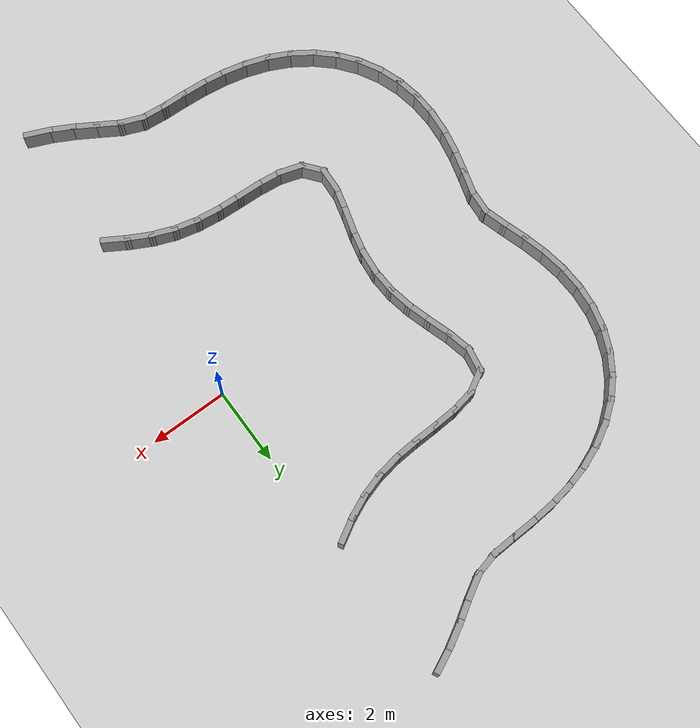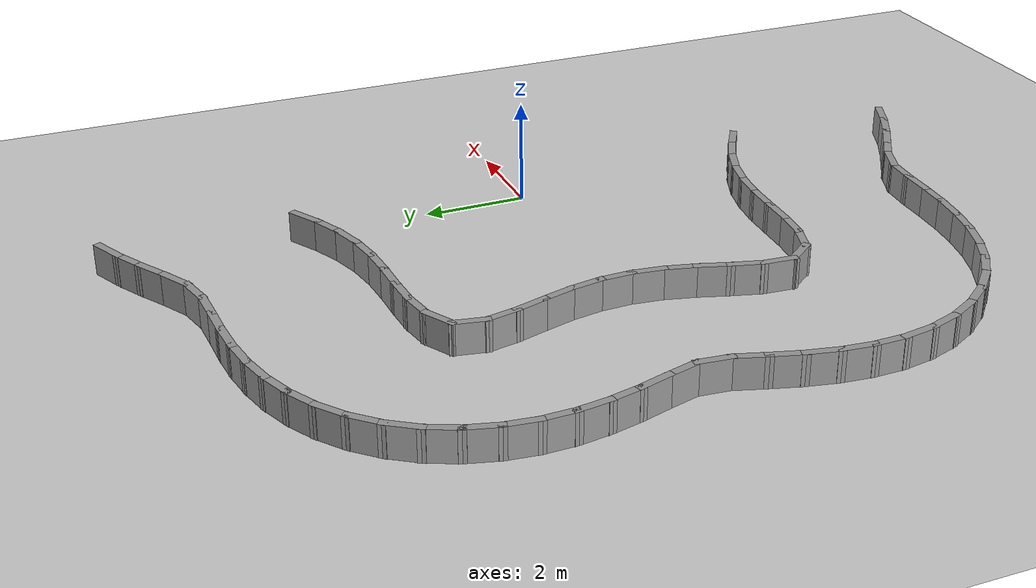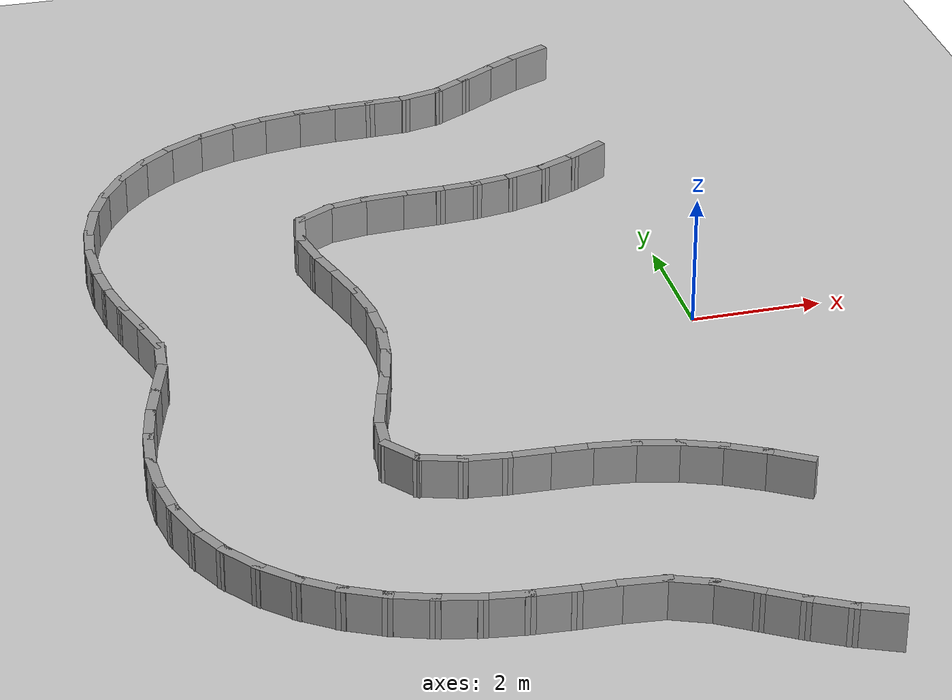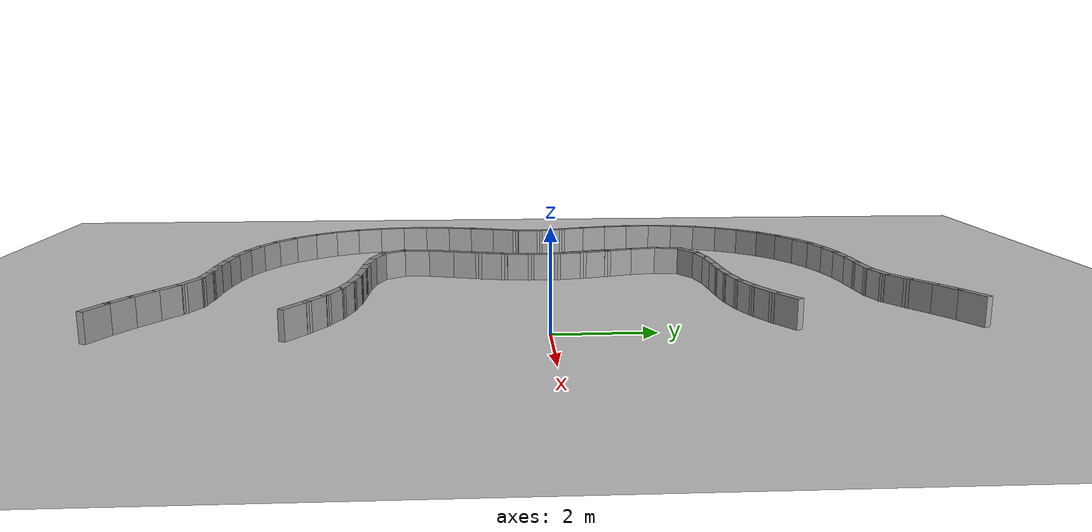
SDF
<sdf version="1.7">
 <world name="default">
  <model name="ground_plane">
   <static>1</static>
   <link name="link">
    <collision name="collision">
     <geometry><plane><normal>0 0 1</normal><size>100 100</size></plane></geometry>
     <surface><friction><ode><mu>100</mu><mu2>50</mu2></ode></friction></surface>
    </collision>
    <visual name="visual">
     <cast_shadows>0</cast_shadows>
     <geometry><plane><normal>0 0 1</normal><size>100 100</size></plane></geometry>
     <material>
      <script><uri>file://media/materials/scripts/gazebo.material</uri><name>Gazebo/Grey</name></script>
     </material>
    </visual>
   </link>
  </model>
  <model name="rand_lobed_06">
   <link name="Wall_16">
    <collision name="Wall_16_Collision">
     <geometry><box><size>0.7499 0.1500 0.6000</size></box></geometry>
     <pose>0 0 0.3000 0 -0 0</pose>
    </collision>
    <visual name="Wall_16_Visual">
     <pose>0 0 0.3000 0 -0 0</pose>
     <geometry><box><size>0.7499 0.1500 0.6000</size></box></geometry>
     <material>
      <script><uri>file://media/materials/scripts/gazebo.material</uri><name>Gazebo/Grey</name></script>
      <ambient>1 1 1 1</ambient>
     </material>
    </visual>
    <pose>-0.3898 4.5108 0 0 -0 -2.62298</pose>
   </link>
   <link name="Wall_17">
    <collision name="Wall_17_Collision">
     <geometry><box><size>0.7497 0.1500 0.6000</size></box></geometry>
     <pose>0 0 0.3000 0 -0 0</pose>
    </collision>
    <visual name="Wall_17_Visual">
     <pose>0 0 0.3000 0 -0 0</pose>
     <geometry><box><size>0.7497 0.1500 0.6000</size></box></geometry>
     <material>
      <script><uri>file://media/materials/scripts/gazebo.material</uri><name>Gazebo/Grey</name></script>
      <ambient>1 1 1 1</ambient>
     </material>
    </visual>
    <pose>-0.9238 4.2391 0 0 -0 -2.71880</pose>
   </link>
   <link name="Wall_18">
    <collision name="Wall_18_Collision">
     <geometry><box><size>0.7496 0.1500 0.6000</size></box></geometry>
     <pose>0 0 0.3000 0 -0 0</pose>
    </collision>
    <visual name="Wall_18_Visual">
     <pose>0 0 0.3000 0 -0 0</pose>
     <geometry><box><size>0.7496 0.1500 0.6000</size></box></geometry>
     <material>
      <script><uri>file://media/materials/scripts/gazebo.material</uri><name>Gazebo/Grey</name></script>
      <ambient>1 1 1 1</ambient>
     </material>
    </visual>
    <pose>-1.4839 4.0286 0 0 -0 -2.84539</pose>
   </link>
   <link name="Wall_19">
    <collision name="Wall_19_Collision">
     <geometry><box><size>0.7497 0.1500 0.6000</size></box></geometry>
     <pose>0 0 0.3000 0 -0 0</pose>
    </collision>
    <visual name="Wall_19_Visual">
     <pose>0 0 0.3000 0 -0 0</pose>
     <geometry><box><size>0.7497 0.1500 0.6000</size></box></geometry>
     <material>
      <script><uri>file://media/materials/scripts/gazebo.material</uri><name>Gazebo/Grey</name></script>
      <ambient>1 1 1 1</ambient>
     </material>
    </visual>
    <pose>-2.0662 3.8906 0 0 -0 -2.97214</pose>
   </link>
   <link name="Wall_20">
    <collision name="Wall_20_Collision">
     <geometry><box><size>0.7499 0.1500 0.6000</size></box></geometry>
     <pose>0 0 0.3000 0 -0 0</pose>
    </collision>
    <visual name="Wall_20_Visual">
     <pose>0 0 0.3000 0 -0 0</pose>
     <geometry><box><size>0.7499 0.1500 0.6000</size></box></geometry>
     <material>
      <script><uri>file://media/materials/scripts/gazebo.material</uri><name>Gazebo/Grey</name></script>
      <ambient>1 1 1 1</ambient>
     </material>
    </visual>
    <pose>-2.6608 3.8182 0 0 -0 -3.06905</pose>
   </link>
   <link name="Wall_21">
    <collision name="Wall_21_Collision">
     <geometry><box><size>0.7500 0.1500 0.6000</size></box></geometry>
     <pose>0 0 0.3000 0 -0 0</pose>
    </collision>
    <visual name="Wall_21_Visual">
     <pose>0 0 0.3000 0 -0 0</pose>
     <geometry><box><size>0.7500 0.1500 0.6000</size></box></geometry>
     <material>
      <script><uri>file://media/materials/scripts/gazebo.material</uri><name>Gazebo/Grey</name></script>
      <ambient>1 1 1 1</ambient>
     </material>
    </visual>
    <pose>-3.2598 3.7874 0 0 -0 -3.11126</pose>
   </link>
   <link name="Wall_22">
    <collision name="Wall_22_Collision">
     <geometry><box><size>0.7499 0.1500 0.6000</size></box></geometry>
     <pose>0 0 0.3000 0 -0 0</pose>
    </collision>
    <visual name="Wall_22_Visual">
     <pose>0 0 0.3000 0 -0 0</pose>
     <geometry><box><size>0.7499 0.1500 0.6000</size></box></geometry>
     <material>
      <script><uri>file://media/materials/scripts/gazebo.material</uri><name>Gazebo/Grey</name></script>
      <ambient>1 1 1 1</ambient>
     </material>
    </visual>
    <pose>-3.8591 3.7602 0 0 -0 -3.08132</pose>
   </link>
   <link name="Wall_23">
    <collision name="Wall_23_Collision">
     <geometry><box><size>0.7491 0.1500 0.6000</size></box></geometry>
     <pose>0 0 0.3000 0 -0 0</pose>
    </collision>
    <visual name="Wall_23_Visual">
     <pose>0 0 0.3000 0 -0 0</pose>
     <geometry><box><size>0.7491 0.1500 0.6000</size></box></geometry>
     <material>
      <script><uri>file://media/materials/scripts/gazebo.material</uri><name>Gazebo/Grey</name></script>
      <ambient>1 1 1 1</ambient>
     </material>
    </visual>
    <pose>-4.4530 3.6874 0 0 -0 -2.95773</pose>
   </link>
   <link name="Wall_24">
    <collision name="Wall_24_Collision">
     <geometry><box><size>0.7418 0.1500 0.6000</size></box></geometry>
     <pose>0 0 0.3000 0 -0 0</pose>
    </collision>
    <visual name="Wall_24_Visual">
     <pose>0 0 0.3000 0 -0 0</pose>
     <geometry><box><size>0.7418 0.1500 0.6000</size></box></geometry>
     <material>
      <script><uri>file://media/materials/scripts/gazebo.material</uri><name>Gazebo/Grey</name></script>
      <ambient>1 1 1 1</ambient>
     </material>
    </visual>
    <pose>-5.0051 3.4870 0 0 -0 -2.62699</pose>
   </link>
   <link name="Wall_25">
    <collision name="Wall_25_Collision">
     <geometry><box><size>0.7351 0.1500 0.6000</size></box></geometry>
     <pose>0 0 0.3000 0 -0 0</pose>
    </collision>
    <visual name="Wall_25_Visual">
     <pose>0 0 0.3000 0 -0 0</pose>
     <geometry><box><size>0.7351 0.1500 0.6000</size></box></geometry>
     <material>
      <script><uri>file://media/materials/scripts/gazebo.material</uri><name>Gazebo/Grey</name></script>
      <ambient>1 1 1 1</ambient>
     </material>
    </visual>
    <pose>-5.3164 3.0538 0 0 -0 -1.75554</pose>
   </link>
   <link name="Wall_26">
    <collision name="Wall_26_Collision">
     <geometry><box><size>0.7492 0.1500 0.6000</size></box></geometry>
     <pose>0 0 0.3000 0 -0 0</pose>
    </collision>
    <visual name="Wall_26_Visual">
     <pose>0 0 0.3000 0 -0 0</pose>
     <geometry><box><size>0.7492 0.1500 0.6000</size></box></geometry>
     <material>
      <script><uri>file://media/materials/scripts/gazebo.material</uri><name>Gazebo/Grey</name></script>
      <ambient>1 1 1 1</ambient>
     </material>
    </visual>
    <pose>-5.3083 2.4731 0 0 -0 -1.36271</pose>
   </link>
   <link name="Wall_27">
    <collision name="Wall_27_Collision">
     <geometry><box><size>0.7500 0.1500 0.6000</size></box></geometry>
     <pose>0 0 0.3000 0 -0 0</pose>
    </collision>
    <visual name="Wall_27_Visual">
     <pose>0 0 0.3000 0 -0 0</pose>
     <geometry><box><size>0.7500 0.1500 0.6000</size></box></geometry>
     <material>
      <script><uri>file://media/materials/scripts/gazebo.material</uri><name>Gazebo/Grey</name></script>
      <ambient>1 1 1 1</ambient>
     </material>
    </visual>
    <pose>-5.1570 1.8935 0 0 -0 -1.26837</pose>
   </link>
   <link name="Wall_28">
    <collision name="Wall_28_Collision">
     <geometry><box><size>0.7499 0.1500 0.6000</size></box></geometry>
     <pose>0 0 0.3000 0 -0 0</pose>
    </collision>
    <visual name="Wall_28_Visual">
     <pose>0 0 0.3000 0 -0 0</pose>
     <geometry><box><size>0.7499 0.1500 0.6000</size></box></geometry>
     <material>
      <script><uri>file://media/materials/scripts/gazebo.material</uri><name>Gazebo/Grey</name></script>
      <ambient>1 1 1 1</ambient>
     </material>
    </visual>
    <pose>-4.9851 1.3188 0 0 -0 -1.29181</pose>
   </link>
   <link name="Wall_29">
    <collision name="Wall_29_Collision">
     <geometry><box><size>0.7496 0.1500 0.6000</size></box></geometry>
     <pose>0 0 0.3000 0 -0 0</pose>
    </collision>
    <visual name="Wall_29_Visual">
     <pose>0 0 0.3000 0 -0 0</pose>
     <geometry><box><size>0.7496 0.1500 0.6000</size></box></geometry>
     <material>
      <script><uri>file://media/materials/scripts/gazebo.material</uri><name>Gazebo/Grey</name></script>
      <ambient>1 1 1 1</ambient>
     </material>
    </visual>
    <pose>-4.8491 0.7355 0 0 -0 -1.39195</pose>
   </link>
   <link name="Wall_30">
    <collision name="Wall_30_Collision">
     <geometry><box><size>0.7494 0.1500 0.6000</size></box></geometry>
     <pose>0 0 0.3000 0 -0 0</pose>
    </collision>
    <visual name="Wall_30_Visual">
     <pose>0 0 0.3000 0 -0 0</pose>
     <geometry><box><size>0.7494 0.1500 0.6000</size></box></geometry>
     <material>
      <script><uri>file://media/materials/scripts/gazebo.material</uri><name>Gazebo/Grey</name></script>
      <ambient>1 1 1 1</ambient>
     </material>
    </visual>
    <pose>-4.7850 0.1410 0 0 -0 -1.53478</pose>
   </link>
   <link name="Wall_31">
    <collision name="Wall_31_Collision">
     <geometry><box><size>0.7495 0.1500 0.6000</size></box></geometry>
     <pose>0 0 0.3000 0 -0 0</pose>
    </collision>
    <visual name="Wall_31_Visual">
     <pose>0 0 0.3000 0 -0 0</pose>
     <geometry><box><size>0.7495 0.1500 0.6000</size></box></geometry>
     <material>
      <script><uri>file://media/materials/scripts/gazebo.material</uri><name>Gazebo/Grey</name></script>
      <ambient>1 1 1 1</ambient>
     </material>
    </visual>
    <pose>-4.8085 -0.4563 0 0 -0 -1.68550</pose>
   </link>
   <link name="Wall_32">
    <collision name="Wall_32_Collision">
     <geometry><box><size>0.7497 0.1500 0.6000</size></box></geometry>
     <pose>0 0 0.3000 0 -0 0</pose>
    </collision>
    <visual name="Wall_32_Visual">
     <pose>0 0 0.3000 0 -0 0</pose>
     <geometry><box><size>0.7497 0.1500 0.6000</size></box></geometry>
     <material>
      <script><uri>file://media/materials/scripts/gazebo.material</uri><name>Gazebo/Grey</name></script>
      <ambient>1 1 1 1</ambient>
     </material>
    </visual>
    <pose>-4.9139 -1.0454 0 0 -0 -1.81005</pose>
   </link>
   <link name="Wall_33">
    <collision name="Wall_33_Collision">
     <geometry><box><size>0.7500 0.1500 0.6000</size></box></geometry>
     <pose>0 0 0.3000 0 -0 0</pose>
    </collision>
    <visual name="Wall_33_Visual">
     <pose>0 0 0.3000 0 -0 0</pose>
     <geometry><box><size>0.7500 0.1500 0.6000</size></box></geometry>
     <material>
      <script><uri>file://media/materials/scripts/gazebo.material</uri><name>Gazebo/Grey</name></script>
      <ambient>1 1 1 1</ambient>
     </material>
    </visual>
    <pose>-5.0745 -1.6231 0 0 -0 -1.87388</pose>
   </link>
   <link name="Wall_34">
    <collision name="Wall_34_Collision">
     <geometry><box><size>0.7498 0.1500 0.6000</size></box></geometry>
     <pose>0 0 0.3000 0 -0 0</pose>
    </collision>
    <visual name="Wall_34_Visual">
     <pose>0 0 0.3000 0 -0 0</pose>
     <geometry><box><size>0.7498 0.1500 0.6000</size></box></geometry>
     <material>
      <script><uri>file://media/materials/scripts/gazebo.material</uri><name>Gazebo/Grey</name></script>
      <ambient>1 1 1 1</ambient>
     </material>
    </visual>
    <pose>-5.2444 -2.1983 0 0 -0 -1.84209</pose>
   </link>
   <link name="Wall_35">
    <collision name="Wall_35_Collision">
     <geometry><box><size>0.7469 0.1500 0.6000</size></box></geometry>
     <pose>0 0 0.3000 0 -0 0</pose>
    </collision>
    <visual name="Wall_35_Visual">
     <pose>0 0 0.3000 0 -0 0</pose>
     <geometry><box><size>0.7469 0.1500 0.6000</size></box></geometry>
     <material>
      <script><uri>file://media/materials/scripts/gazebo.material</uri><name>Gazebo/Grey</name></script>
      <ambient>1 1 1 1</ambient>
     </material>
    </visual>
    <pose>-5.3463 -2.7849 0 0 -0 -1.64294</pose>
   </link>
   <link name="Wall_36">
    <collision name="Wall_36_Collision">
     <geometry><box><size>0.7226 0.1500 0.6000</size></box></geometry>
     <pose>0 0 0.3000 0 -0 0</pose>
    </collision>
    <visual name="Wall_36_Visual">
     <pose>0 0 0.3000 0 -0 0</pose>
     <geometry><box><size>0.7226 0.1500 0.6000</size></box></geometry>
     <material>
      <script><uri>file://media/materials/scripts/gazebo.material</uri><name>Gazebo/Grey</name></script>
      <ambient>1 1 1 1</ambient>
     </material>
    </visual>
    <pose>-5.1893 -3.3064 0 0 -0 -0.89751</pose>
   </link>
   <link name="Wall_37">
    <collision name="Wall_37_Collision">
     <geometry><box><size>0.7479 0.1500 0.6000</size></box></geometry>
     <pose>0 0 0.3000 0 -0 0</pose>
    </collision>
    <visual name="Wall_37_Visual">
     <pose>0 0 0.3000 0 -0 0</pose>
     <geometry><box><size>0.7479 0.1500 0.6000</size></box></geometry>
     <material>
      <script><uri>file://media/materials/scripts/gazebo.material</uri><name>Gazebo/Grey</name></script>
      <ambient>1 1 1 1</ambient>
     </material>
    </visual>
    <pose>-4.7247 -3.6171 0 0 -0 -0.29486</pose>
   </link>
   <link name="Wall_38">
    <collision name="Wall_38_Collision">
     <geometry><box><size>0.7497 0.1500 0.6000</size></box></geometry>
     <pose>0 0 0.3000 0 -0 0</pose>
    </collision>
    <visual name="Wall_38_Visual">
     <pose>0 0 0.3000 0 -0 0</pose>
     <geometry><box><size>0.7497 0.1500 0.6000</size></box></geometry>
     <material>
      <script><uri>file://media/materials/scripts/gazebo.material</uri><name>Gazebo/Grey</name></script>
      <ambient>1 1 1 1</ambient>
     </material>
    </visual>
    <pose>-4.1404 -3.7353 0 0 -0 -0.10435</pose>
   </link>
   <link name="Wall_39">
    <collision name="Wall_39_Collision">
     <geometry><box><size>0.7500 0.1500 0.6000</size></box></geometry>
     <pose>0 0 0.3000 0 -0 0</pose>
    </collision>
    <visual name="Wall_39_Visual">
     <pose>0 0 0.3000 0 -0 0</pose>
     <geometry><box><size>0.7500 0.1500 0.6000</size></box></geometry>
     <material>
      <script><uri>file://media/materials/scripts/gazebo.material</uri><name>Gazebo/Grey</name></script>
      <ambient>1 1 1 1</ambient>
     </material>
    </visual>
    <pose>-3.5424 -3.7769 0 0 -0 -0.03458</pose>
   </link>
   <link name="Wall_40">
    <collision name="Wall_40_Collision">
     <geometry><box><size>0.7499 0.1500 0.6000</size></box></geometry>
     <pose>0 0 0.3000 0 -0 0</pose>
    </collision>
    <visual name="Wall_40_Visual">
     <pose>0 0 0.3000 0 -0 0</pose>
     <geometry><box><size>0.7499 0.1500 0.6000</size></box></geometry>
     <material>
      <script><uri>file://media/materials/scripts/gazebo.material</uri><name>Gazebo/Grey</name></script>
      <ambient>1 1 1 1</ambient>
     </material>
    </visual>
    <pose>-2.9429 -3.8006 0 0 -0 -0.04460</pose>
   </link>
   <link name="Wall_41">
    <collision name="Wall_41_Collision">
     <geometry><box><size>0.7497 0.1500 0.6000</size></box></geometry>
     <pose>0 0 0.3000 0 -0 0</pose>
    </collision>
    <visual name="Wall_41_Visual">
     <pose>0 0 0.3000 0 -0 0</pose>
     <geometry><box><size>0.7497 0.1500 0.6000</size></box></geometry>
     <material>
      <script><uri>file://media/materials/scripts/gazebo.material</uri><name>Gazebo/Grey</name></script>
      <ambient>1 1 1 1</ambient>
     </material>
    </visual>
    <pose>-2.3455 -3.8494 0 0 -0 -0.11838</pose>
   </link>
   <link name="Wall_42">
    <collision name="Wall_42_Collision">
     <geometry><box><size>0.7496 0.1500 0.6000</size></box></geometry>
     <pose>0 0 0.3000 0 -0 0</pose>
    </collision>
    <visual name="Wall_42_Visual">
     <pose>0 0 0.3000 0 -0 0</pose>
     <geometry><box><size>0.7496 0.1500 0.6000</size></box></geometry>
     <material>
      <script><uri>file://media/materials/scripts/gazebo.material</uri><name>Gazebo/Grey</name></script>
      <ambient>1 1 1 1</ambient>
     </material>
    </visual>
    <pose>-1.7561 -3.9545 0 0 -0 -0.23457</pose>
   </link>
   <link name="Wall_43">
    <collision name="Wall_43_Collision">
     <geometry><box><size>0.7496 0.1500 0.6000</size></box></geometry>
     <pose>0 0 0.3000 0 -0 0</pose>
    </collision>
    <visual name="Wall_43_Visual">
     <pose>0 0 0.3000 0 -0 0</pose>
     <geometry><box><size>0.7496 0.1500 0.6000</size></box></geometry>
     <material>
      <script><uri>file://media/materials/scripts/gazebo.material</uri><name>Gazebo/Grey</name></script>
      <ambient>1 1 1 1</ambient>
     </material>
    </visual>
    <pose>-1.1845 -4.1312 0 0 -0 -0.36510</pose>
   </link>
   <link name="Wall_44">
    <collision name="Wall_44_Collision">
     <geometry><box><size>0.7498 0.1500 0.6000</size></box></geometry>
     <pose>0 0 0.3000 0 -0 0</pose>
    </collision>
    <visual name="Wall_44_Visual">
     <pose>0 0 0.3000 0 -0 0</pose>
     <geometry><box><size>0.7498 0.1500 0.6000</size></box></geometry>
     <material>
      <script><uri>file://media/materials/scripts/gazebo.material</uri><name>Gazebo/Grey</name></script>
      <ambient>1 1 1 1</ambient>
     </material>
    </visual>
    <pose>-0.6384 -4.3765 0 0 -0 -0.47925</pose>
   </link>
   <link name="Wall_45">
    <collision name="Wall_45_Collision">
     <geometry><box><size>0.7500 0.1500 0.6000</size></box></geometry>
     <pose>0 0 0.3000 0 -0 0</pose>
    </collision>
    <visual name="Wall_45_Visual">
     <pose>0 0 0.3000 0 -0 0</pose>
     <geometry><box><size>0.7500 0.1500 0.6000</size></box></geometry>
     <material>
      <script><uri>file://media/materials/scripts/gazebo.material</uri><name>Gazebo/Grey</name></script>
      <ambient>1 1 1 1</ambient>
     </material>
    </visual>
    <pose>-0.1160 -4.6708 0 0 -0 -0.54672</pose>
   </link>
   <link name="Wall_85">
    <collision name="Wall_85_Collision">
     <geometry><box><size>0.7498 0.1500 0.6000</size></box></geometry>
     <pose>0 0 0.3000 0 -0 0</pose>
    </collision>
    <visual name="Wall_85_Visual">
     <pose>0 0 0.3000 0 -0 0</pose>
     <geometry><box><size>0.7498 0.1500 0.6000</size></box></geometry>
     <material>
      <script><uri>file://media/materials/scripts/gazebo.material</uri><name>Gazebo/Grey</name></script>
      <ambient>1 1 1 1</ambient>
     </material>
    </visual>
    <pose>-0.3827 8.1533 0 0 -0 -2.70445</pose>
   </link>
   <link name="Wall_86">
    <collision name="Wall_86_Collision">
     <geometry><box><size>0.7499 0.1500 0.6000</size></box></geometry>
     <pose>0 0 0.3000 0 -0 0</pose>
    </collision>
    <visual name="Wall_86_Visual">
     <pose>0 0 0.3000 0 -0 0</pose>
     <geometry><box><size>0.7499 0.1500 0.6000</size></box></geometry>
     <material>
      <script><uri>file://media/materials/scripts/gazebo.material</uri><name>Gazebo/Grey</name></script>
      <ambient>1 1 1 1</ambient>
     </material>
    </visual>
    <pose>-0.9159 7.8793 0 0 -0 -2.62931</pose>
   </link>
   <link name="Wall_87">
    <collision name="Wall_87_Collision">
     <geometry><box><size>0.7500 0.1500 0.6000</size></box></geometry>
     <pose>0 0 0.3000 0 -0 0</pose>
    </collision>
    <visual name="Wall_87_Visual">
     <pose>0 0 0.3000 0 -0 0</pose>
     <geometry><box><size>0.7500 0.1500 0.6000</size></box></geometry>
     <material>
      <script><uri>file://media/materials/scripts/gazebo.material</uri><name>Gazebo/Grey</name></script>
      <ambient>1 1 1 1</ambient>
     </material>
    </visual>
    <pose>-1.4326 7.5746 0 0 -0 -2.58833</pose>
   </link>
   <link name="Wall_88">
    <collision name="Wall_88_Collision">
     <geometry><box><size>0.7496 0.1500 0.6000</size></box></geometry>
     <pose>0 0 0.3000 0 -0 0</pose>
    </collision>
    <visual name="Wall_88_Visual">
     <pose>0 0 0.3000 0 -0 0</pose>
     <geometry><box><size>0.7496 0.1500 0.6000</size></box></geometry>
     <material>
      <script><uri>file://media/materials/scripts/gazebo.material</uri><name>Gazebo/Grey</name></script>
      <ambient>1 1 1 1</ambient>
     </material>
    </visual>
    <pose>-1.9488 7.2694 0 0 -0 -2.62684</pose>
   </link>
   <link name="Wall_89">
    <collision name="Wall_89_Collision">
     <geometry><box><size>0.7467 0.1500 0.6000</size></box></geometry>
     <pose>0 0 0.3000 0 -0 0</pose>
    </collision>
    <visual name="Wall_89_Visual">
     <pose>0 0 0.3000 0 -0 0</pose>
     <geometry><box><size>0.7467 0.1500 0.6000</size></box></geometry>
     <material>
      <script><uri>file://media/materials/scripts/gazebo.material</uri><name>Gazebo/Grey</name></script>
      <ambient>1 1 1 1</ambient>
     </material>
    </visual>
    <pose>-2.4993 7.0497 0 0 -0 -2.89771</pose>
   </link>
   <link name="Wall_90">
    <collision name="Wall_90_Collision">
     <geometry><box><size>0.7499 0.1500 0.6000</size></box></geometry>
     <pose>0 0 0.3000 0 -0 0</pose>
    </collision>
    <visual name="Wall_90_Visual">
     <pose>0 0 0.3000 0 -0 0</pose>
     <geometry><box><size>0.7499 0.1500 0.6000</size></box></geometry>
     <material>
      <script><uri>file://media/materials/scripts/gazebo.material</uri><name>Gazebo/Grey</name></script>
      <ambient>1 1 1 1</ambient>
     </material>
    </visual>
    <pose>-3.0884 6.9637 0 0 -0 -3.09476</pose>
   </link>
   <link name="Wall_91">
    <collision name="Wall_91_Collision">
     <geometry><box><size>0.7500 0.1500 0.6000</size></box></geometry>
     <pose>0 0 0.3000 0 -0 0</pose>
    </collision>
    <visual name="Wall_91_Visual">
     <pose>0 0 0.3000 0 -0 0</pose>
     <geometry><box><size>0.7500 0.1500 0.6000</size></box></geometry>
     <material>
      <script><uri>file://media/materials/scripts/gazebo.material</uri><name>Gazebo/Grey</name></script>
      <ambient>1 1 1 1</ambient>
     </material>
    </visual>
    <pose>-3.6878 6.9390 0 0 -0 -3.10623</pose>
   </link>
   <link name="Wall_92">
    <collision name="Wall_92_Collision">
     <geometry><box><size>0.7499 0.1500 0.6000</size></box></geometry>
     <pose>0 0 0.3000 0 -0 0</pose>
    </collision>
    <visual name="Wall_92_Visual">
     <pose>0 0 0.3000 0 -0 0</pose>
     <geometry><box><size>0.7499 0.1500 0.6000</size></box></geometry>
     <material>
      <script><uri>file://media/materials/scripts/gazebo.material</uri><name>Gazebo/Grey</name></script>
      <ambient>1 1 1 1</ambient>
     </material>
    </visual>
    <pose>-4.2865 6.9039 0 0 -0 -3.05982</pose>
   </link>
   <link name="Wall_93">
    <collision name="Wall_93_Collision">
     <geometry><box><size>0.7498 0.1500 0.6000</size></box></geometry>
     <pose>0 0 0.3000 0 -0 0</pose>
    </collision>
    <visual name="Wall_93_Visual">
     <pose>0 0 0.3000 0 -0 0</pose>
     <geometry><box><size>0.7498 0.1500 0.6000</size></box></geometry>
     <material>
      <script><uri>file://media/materials/scripts/gazebo.material</uri><name>Gazebo/Grey</name></script>
      <ambient>1 1 1 1</ambient>
     </material>
    </visual>
    <pose>-4.8816 6.8322 0 0 -0 -2.98346</pose>
   </link>
   <link name="Wall_94">
    <collision name="Wall_94_Collision">
     <geometry><box><size>0.7497 0.1500 0.6000</size></box></geometry>
     <pose>0 0 0.3000 0 -0 0</pose>
    </collision>
    <visual name="Wall_94_Visual">
     <pose>0 0 0.3000 0 -0 0</pose>
     <geometry><box><size>0.7497 0.1500 0.6000</size></box></geometry>
     <material>
      <script><uri>file://media/materials/scripts/gazebo.material</uri><name>Gazebo/Grey</name></script>
      <ambient>1 1 1 1</ambient>
     </material>
    </visual>
    <pose>-5.4679 6.7089 0 0 -0 -2.88529</pose>
   </link>
   <link name="Wall_95">
    <collision name="Wall_95_Collision">
     <geometry><box><size>0.7496 0.1500 0.6000</size></box></geometry>
     <pose>0 0 0.3000 0 -0 0</pose>
    </collision>
    <visual name="Wall_95_Visual">
     <pose>0 0 0.3000 0 -0 0</pose>
     <geometry><box><size>0.7496 0.1500 0.6000</size></box></geometry>
     <material>
      <script><uri>file://media/materials/scripts/gazebo.material</uri><name>Gazebo/Grey</name></script>
      <ambient>1 1 1 1</ambient>
     </material>
    </visual>
    <pose>-6.0371 6.5237 0 0 -0 -2.76871</pose>
   </link>
   <link name="Wall_96">
    <collision name="Wall_96_Collision">
     <geometry><box><size>0.7495 0.1500 0.6000</size></box></geometry>
     <pose>0 0 0.3000 0 -0 0</pose>
    </collision>
    <visual name="Wall_96_Visual">
     <pose>0 0 0.3000 0 -0 0</pose>
     <geometry><box><size>0.7495 0.1500 0.6000</size></box></geometry>
     <material>
      <script><uri>file://media/materials/scripts/gazebo.material</uri><name>Gazebo/Grey</name></script>
      <ambient>1 1 1 1</ambient>
     </material>
    </visual>
    <pose>-6.5785 6.2691 0 0 -0 -2.63538</pose>
   </link>
   <link name="Wall_97">
    <collision name="Wall_97_Collision">
     <geometry><box><size>0.7494 0.1500 0.6000</size></box></geometry>
     <pose>0 0 0.3000 0 -0 0</pose>
    </collision>
    <visual name="Wall_97_Visual">
     <pose>0 0 0.3000 0 -0 0</pose>
     <geometry><box><size>0.7494 0.1500 0.6000</size></box></geometry>
     <material>
      <script><uri>file://media/materials/scripts/gazebo.material</uri><name>Gazebo/Grey</name></script>
      <ambient>1 1 1 1</ambient>
     </material>
    </visual>
    <pose>-7.0786 5.9416 0 0 -0 -2.48827</pose>
   </link>
   <link name="Wall_98">
    <collision name="Wall_98_Collision">
     <geometry><box><size>0.7493 0.1500 0.6000</size></box></geometry>
     <pose>0 0 0.3000 0 -0 0</pose>
    </collision>
    <visual name="Wall_98_Visual">
     <pose>0 0 0.3000 0 -0 0</pose>
     <geometry><box><size>0.7493 0.1500 0.6000</size></box></geometry>
     <material>
      <script><uri>file://media/materials/scripts/gazebo.material</uri><name>Gazebo/Grey</name></script>
      <ambient>1 1 1 1</ambient>
     </material>
    </visual>
    <pose>-7.5229 5.5421 0 0 -0 -2.33012</pose>
   </link>
   <link name="Wall_99">
    <collision name="Wall_99_Collision">
     <geometry><box><size>0.7493 0.1500 0.6000</size></box></geometry>
     <pose>0 0 0.3000 0 -0 0</pose>
    </collision>
    <visual name="Wall_99_Visual">
     <pose>0 0 0.3000 0 -0 0</pose>
     <geometry><box><size>0.7493 0.1500 0.6000</size></box></geometry>
     <material>
      <script><uri>file://media/materials/scripts/gazebo.material</uri><name>Gazebo/Grey</name></script>
      <ambient>1 1 1 1</ambient>
     </material>
    </visual>
    <pose>-7.8971 5.0766 0 0 -0 -2.16545</pose>
   </link>
   <link name="Wall_100">
    <collision name="Wall_100_Collision">
     <geometry><box><size>0.7493 0.1500 0.6000</size></box></geometry>
     <pose>0 0 0.3000 0 -0 0</pose>
    </collision>
    <visual name="Wall_100_Visual">
     <pose>0 0 0.3000 0 -0 0</pose>
     <geometry><box><size>0.7493 0.1500 0.6000</size></box></geometry>
     <material>
      <script><uri>file://media/materials/scripts/gazebo.material</uri><name>Gazebo/Grey</name></script>
      <ambient>1 1 1 1</ambient>
     </material>
    </visual>
    <pose>-8.1895 4.5558 0 0 -0 -1.99938</pose>
   </link>
   <link name="Wall_101">
    <collision name="Wall_101_Collision">
     <geometry><box><size>0.7494 0.1500 0.6000</size></box></geometry>
     <pose>0 0 0.3000 0 -0 0</pose>
    </collision>
    <visual name="Wall_101_Visual">
     <pose>0 0 0.3000 0 -0 0</pose>
     <geometry><box><size>0.7494 0.1500 0.6000</size></box></geometry>
     <material>
      <script><uri>file://media/materials/scripts/gazebo.material</uri><name>Gazebo/Grey</name></script>
      <ambient>1 1 1 1</ambient>
     </material>
    </visual>
    <pose>-8.3930 3.9942 0 0 -0 -1.83741</pose>
   </link>
   <link name="Wall_102">
    <collision name="Wall_102_Collision">
     <geometry><box><size>0.7495 0.1500 0.6000</size></box></geometry>
     <pose>0 0 0.3000 0 -0 0</pose>
    </collision>
    <visual name="Wall_102_Visual">
     <pose>0 0 0.3000 0 -0 0</pose>
     <geometry><box><size>0.7495 0.1500 0.6000</size></box></geometry>
     <material>
      <script><uri>file://media/materials/scripts/gazebo.material</uri><name>Gazebo/Grey</name></script>
      <ambient>1 1 1 1</ambient>
     </material>
    </visual>
    <pose>-8.5059 3.4073 0 0 -0 -1.68451</pose>
   </link>
   <link name="Wall_103">
    <collision name="Wall_103_Collision">
     <geometry><box><size>0.7496 0.1500 0.6000</size></box></geometry>
     <pose>0 0 0.3000 0 -0 0</pose>
    </collision>
    <visual name="Wall_103_Visual">
     <pose>0 0 0.3000 0 -0 0</pose>
     <geometry><box><size>0.7496 0.1500 0.6000</size></box></geometry>
     <material>
      <script><uri>file://media/materials/scripts/gazebo.material</uri><name>Gazebo/Grey</name></script>
      <ambient>1 1 1 1</ambient>
     </material>
    </visual>
    <pose>-8.5326 2.8098 0 0 -0 -1.54620</pose>
   </link>
   <link name="Wall_104">
    <collision name="Wall_104_Collision">
     <geometry><box><size>0.7497 0.1500 0.6000</size></box></geometry>
     <pose>0 0 0.3000 0 -0 0</pose>
    </collision>
    <visual name="Wall_104_Visual">
     <pose>0 0 0.3000 0 -0 0</pose>
     <geometry><box><size>0.7497 0.1500 0.6000</size></box></geometry>
     <material>
      <script><uri>file://media/materials/scripts/gazebo.material</uri><name>Gazebo/Grey</name></script>
      <ambient>1 1 1 1</ambient>
     </material>
    </visual>
    <pose>-8.4820 2.2134 0 0 -0 -1.42632</pose>
   </link>
   <link name="Wall_105">
    <collision name="Wall_105_Collision">
     <geometry><box><size>0.7498 0.1500 0.6000</size></box></geometry>
     <pose>0 0 0.3000 0 -0 0</pose>
    </collision>
    <visual name="Wall_105_Visual">
     <pose>0 0 0.3000 0 -0 0</pose>
     <geometry><box><size>0.7498 0.1500 0.6000</size></box></geometry>
     <material>
      <script><uri>file://media/materials/scripts/gazebo.material</uri><name>Gazebo/Grey</name></script>
      <ambient>1 1 1 1</ambient>
     </material>
    </visual>
    <pose>-8.3677 1.6253 0 0 -0 -1.33119</pose>
   </link>
   <link name="Wall_106">
    <collision name="Wall_106_Collision">
     <geometry><box><size>0.7500 0.1500 0.6000</size></box></geometry>
     <pose>0 0 0.3000 0 -0 0</pose>
    </collision>
    <visual name="Wall_106_Visual">
     <pose>0 0 0.3000 0 -0 0</pose>
     <geometry><box><size>0.7500 0.1500 0.6000</size></box></geometry>
     <material>
      <script><uri>file://media/materials/scripts/gazebo.material</uri><name>Gazebo/Grey</name></script>
      <ambient>1 1 1 1</ambient>
     </material>
    </visual>
    <pose>-8.2082 1.0472 0 0 -0 -1.27197</pose>
   </link>
   <link name="Wall_107">
    <collision name="Wall_107_Collision">
     <geometry><box><size>0.7497 0.1500 0.6000</size></box></geometry>
     <pose>0 0 0.3000 0 -0 0</pose>
    </collision>
    <visual name="Wall_107_Visual">
     <pose>0 0 0.3000 0 -0 0</pose>
     <geometry><box><size>0.7497 0.1500 0.6000</size></box></geometry>
     <material>
      <script><uri>file://media/materials/scripts/gazebo.material</uri><name>Gazebo/Grey</name></script>
      <ambient>1 1 1 1</ambient>
     </material>
    </visual>
    <pose>-8.0380 0.4721 0 0 -0 -1.29439</pose>
   </link>
   <link name="Wall_108">
    <collision name="Wall_108_Collision">
     <geometry><box><size>0.7431 0.1500 0.6000</size></box></geometry>
     <pose>0 0 0.3000 0 -0 0</pose>
    </collision>
    <visual name="Wall_108_Visual">
     <pose>0 0 0.3000 0 -0 0</pose>
     <geometry><box><size>0.7431 0.1500 0.6000</size></box></geometry>
     <material>
      <script><uri>file://media/materials/scripts/gazebo.material</uri><name>Gazebo/Grey</name></script>
      <ambient>1 1 1 1</ambient>
     </material>
    </visual>
    <pose>-7.9836 -0.1116 0 0 -0 -1.66331</pose>
   </link>
   <link name="Wall_109">
    <collision name="Wall_109_Collision">
     <geometry><box><size>0.7500 0.1500 0.6000</size></box></geometry>
     <pose>0 0 0.3000 0 -0 0</pose>
    </collision>
    <visual name="Wall_109_Visual">
     <pose>0 0 0.3000 0 -0 0</pose>
     <geometry><box><size>0.7500 0.1500 0.6000</size></box></geometry>
     <material>
      <script><uri>file://media/materials/scripts/gazebo.material</uri><name>Gazebo/Grey</name></script>
      <ambient>1 1 1 1</ambient>
     </material>
    </visual>
    <pose>-8.1003 -0.6933 0 0 -0 -1.87323</pose>
   </link>
   <link name="Wall_110">
    <collision name="Wall_110_Collision">
     <geometry><box><size>0.7499 0.1500 0.6000</size></box></geometry>
     <pose>0 0 0.3000 0 -0 0</pose>
    </collision>
    <visual name="Wall_110_Visual">
     <pose>0 0 0.3000 0 -0 0</pose>
     <geometry><box><size>0.7499 0.1500 0.6000</size></box></geometry>
     <material>
      <script><uri>file://media/materials/scripts/gazebo.material</uri><name>Gazebo/Grey</name></script>
      <ambient>1 1 1 1</ambient>
     </material>
    </visual>
    <pose>-8.2731 -1.2678 0 0 -0 -1.85255</pose>
   </link>
   <link name="Wall_111">
    <collision name="Wall_111_Collision">
     <geometry><box><size>0.7498 0.1500 0.6000</size></box></geometry>
     <pose>0 0 0.3000 0 -0 0</pose>
    </collision>
    <visual name="Wall_111_Visual">
     <pose>0 0 0.3000 0 -0 0</pose>
     <geometry><box><size>0.7498 0.1500 0.6000</size></box></geometry>
     <material>
      <script><uri>file://media/materials/scripts/gazebo.material</uri><name>Gazebo/Grey</name></script>
      <ambient>1 1 1 1</ambient>
     </material>
    </visual>
    <pose>-8.4180 -1.8494 0 0 -0 -1.77730</pose>
   </link>
   <link name="Wall_112">
    <collision name="Wall_112_Collision">
     <geometry><box><size>0.7496 0.1500 0.6000</size></box></geometry>
     <pose>0 0 0.3000 0 -0 0</pose>
    </collision>
    <visual name="Wall_112_Visual">
     <pose>0 0 0.3000 0 -0 0</pose>
     <geometry><box><size>0.7496 0.1500 0.6000</size></box></geometry>
     <material>
      <script><uri>file://media/materials/scripts/gazebo.material</uri><name>Gazebo/Grey</name></script>
      <ambient>1 1 1 1</ambient>
     </material>
    </visual>
    <pose>-8.5097 -2.4413 0 0 -0 -1.67184</pose>
   </link>
   <link name="Wall_113">
    <collision name="Wall_113_Collision">
     <geometry><box><size>0.7495 0.1500 0.6000</size></box></geometry>
     <pose>0 0 0.3000 0 -0 0</pose>
    </collision>
    <visual name="Wall_113_Visual">
     <pose>0 0 0.3000 0 -0 0</pose>
     <geometry><box><size>0.7495 0.1500 0.6000</size></box></geometry>
     <material>
      <script><uri>file://media/materials/scripts/gazebo.material</uri><name>Gazebo/Grey</name></script>
      <ambient>1 1 1 1</ambient>
     </material>
    </visual>
    <pose>-8.5320 -3.0392 0 0 -0 -1.54438</pose>
   </link>
   <link name="Wall_114">
    <collision name="Wall_114_Collision">
     <geometry><box><size>0.7494 0.1500 0.6000</size></box></geometry>
     <pose>0 0 0.3000 0 -0 0</pose>
    </collision>
    <visual name="Wall_114_Visual">
     <pose>0 0 0.3000 0 -0 0</pose>
     <geometry><box><size>0.7494 0.1500 0.6000</size></box></geometry>
     <material>
      <script><uri>file://media/materials/scripts/gazebo.material</uri><name>Gazebo/Grey</name></script>
      <ambient>1 1 1 1</ambient>
     </material>
    </visual>
    <pose>-8.4732 -3.6342 0 0 -0 -1.39999</pose>
   </link>
   <link name="Wall_115">
    <collision name="Wall_115_Collision">
     <geometry><box><size>0.7493 0.1500 0.6000</size></box></geometry>
     <pose>0 0 0.3000 0 -0 0</pose>
    </collision>
    <visual name="Wall_115_Visual">
     <pose>0 0 0.3000 0 -0 0</pose>
     <geometry><box><size>0.7493 0.1500 0.6000</size></box></geometry>
     <material>
      <script><uri>file://media/materials/scripts/gazebo.material</uri><name>Gazebo/Grey</name></script>
      <ambient>1 1 1 1</ambient>
     </material>
    </visual>
    <pose>-8.3257 -4.2133 0 0 -0 -1.24291</pose>
   </link>
   <link name="Wall_116">
    <collision name="Wall_116_Collision">
     <geometry><box><size>0.7493 0.1500 0.6000</size></box></geometry>
     <pose>0 0 0.3000 0 -0 0</pose>
    </collision>
    <visual name="Wall_116_Visual">
     <pose>0 0 0.3000 0 -0 0</pose>
     <geometry><box><size>0.7493 0.1500 0.6000</size></box></geometry>
     <material>
      <script><uri>file://media/materials/scripts/gazebo.material</uri><name>Gazebo/Grey</name></script>
      <ambient>1 1 1 1</ambient>
     </material>
    </visual>
    <pose>-8.0877 -4.7611 0 0 -0 -1.07875</pose>
   </link>
   <link name="Wall_117">
    <collision name="Wall_117_Collision">
     <geometry><box><size>0.7493 0.1500 0.6000</size></box></geometry>
     <pose>0 0 0.3000 0 -0 0</pose>
    </collision>
    <visual name="Wall_117_Visual">
     <pose>0 0 0.3000 0 -0 0</pose>
     <geometry><box><size>0.7493 0.1500 0.6000</size></box></geometry>
     <material>
      <script><uri>file://media/materials/scripts/gazebo.material</uri><name>Gazebo/Grey</name></script>
      <ambient>1 1 1 1</ambient>
     </material>
    </visual>
    <pose>-7.7628 -5.2622 0 0 -0 -0.91259</pose>
   </link>
   <link name="Wall_118">
    <collision name="Wall_118_Collision">
     <geometry><box><size>0.7494 0.1500 0.6000</size></box></geometry>
     <pose>0 0 0.3000 0 -0 0</pose>
    </collision>
    <visual name="Wall_118_Visual">
     <pose>0 0 0.3000 0 -0 0</pose>
     <geometry><box><size>0.7494 0.1500 0.6000</size></box></geometry>
     <material>
      <script><uri>file://media/materials/scripts/gazebo.material</uri><name>Gazebo/Grey</name></script>
      <ambient>1 1 1 1</ambient>
     </material>
    </visual>
    <pose>-7.3602 -5.7035 0 0 -0 -0.74981</pose>
   </link>
   <link name="Wall_119">
    <collision name="Wall_119_Collision">
     <geometry><box><size>0.7494 0.1500 0.6000</size></box></geometry>
     <pose>0 0 0.3000 0 -0 0</pose>
    </collision>
    <visual name="Wall_119_Visual">
     <pose>0 0 0.3000 0 -0 0</pose>
     <geometry><box><size>0.7494 0.1500 0.6000</size></box></geometry>
     <material>
      <script><uri>file://media/materials/scripts/gazebo.material</uri><name>Gazebo/Grey</name></script>
      <ambient>1 1 1 1</ambient>
     </material>
    </visual>
    <pose>-6.8927 -6.0758 0 0 -0 -0.59536</pose>
   </link>
   <link name="Wall_120">
    <collision name="Wall_120_Collision">
     <geometry><box><size>0.7495 0.1500 0.6000</size></box></geometry>
     <pose>0 0 0.3000 0 -0 0</pose>
    </collision>
    <visual name="Wall_120_Visual">
     <pose>0 0 0.3000 0 -0 0</pose>
     <geometry><box><size>0.7495 0.1500 0.6000</size></box></geometry>
     <material>
      <script><uri>file://media/materials/scripts/gazebo.material</uri><name>Gazebo/Grey</name></script>
      <ambient>1 1 1 1</ambient>
     </material>
    </visual>
    <pose>-6.3751 -6.3752 0 0 -0 -0.45335</pose>
   </link>
   <link name="Wall_121">
    <collision name="Wall_121_Collision">
     <geometry><box><size>0.7496 0.1500 0.6000</size></box></geometry>
     <pose>0 0 0.3000 0 -0 0</pose>
    </collision>
    <visual name="Wall_121_Visual">
     <pose>0 0 0.3000 0 -0 0</pose>
     <geometry><box><size>0.7496 0.1500 0.6000</size></box></geometry>
     <material>
      <script><uri>file://media/materials/scripts/gazebo.material</uri><name>Gazebo/Grey</name></script>
      <ambient>1 1 1 1</ambient>
     </material>
    </visual>
    <pose>-5.8216 -6.6026 0 0 -0 -0.32617</pose>
   </link>
   <link name="Wall_122">
    <collision name="Wall_122_Collision">
     <geometry><box><size>0.7497 0.1500 0.6000</size></box></geometry>
     <pose>0 0 0.3000 0 -0 0</pose>
    </collision>
    <visual name="Wall_122_Visual">
     <pose>0 0 0.3000 0 -0 0</pose>
     <geometry><box><size>0.7497 0.1500 0.6000</size></box></geometry>
     <material>
      <script><uri>file://media/materials/scripts/gazebo.material</uri><name>Gazebo/Grey</name></script>
      <ambient>1 1 1 1</ambient>
     </material>
    </visual>
    <pose>-5.2447 -6.7630 0 0 -0 -0.21634</pose>
   </link>
   <link name="Wall_123">
    <collision name="Wall_123_Collision">
     <geometry><box><size>0.7498 0.1500 0.6000</size></box></geometry>
     <pose>0 0 0.3000 0 -0 0</pose>
    </collision>
    <visual name="Wall_123_Visual">
     <pose>0 0 0.3000 0 -0 0</pose>
     <geometry><box><size>0.7498 0.1500 0.6000</size></box></geometry>
     <material>
      <script><uri>file://media/materials/scripts/gazebo.material</uri><name>Gazebo/Grey</name></script>
      <ambient>1 1 1 1</ambient>
     </material>
    </visual>
    <pose>-4.6543 -6.8651 0 0 -0 -0.12602</pose>
   </link>
   <link name="Wall_124">
    <collision name="Wall_124_Collision">
     <geometry><box><size>0.7499 0.1500 0.6000</size></box></geometry>
     <pose>0 0 0.3000 0 -0 0</pose>
    </collision>
    <visual name="Wall_124_Visual">
     <pose>0 0 0.3000 0 -0 0</pose>
     <geometry><box><size>0.7499 0.1500 0.6000</size></box></geometry>
     <material>
      <script><uri>file://media/materials/scripts/gazebo.material</uri><name>Gazebo/Grey</name></script>
      <ambient>1 1 1 1</ambient>
     </material>
    </visual>
    <pose>-4.0573 -6.9207 0 0 -0 -0.05965</pose>
   </link>
   <link name="Wall_125">
    <collision name="Wall_125_Collision">
     <geometry><box><size>0.7500 0.1500 0.6000</size></box></geometry>
     <pose>0 0 0.3000 0 -0 0</pose>
    </collision>
    <visual name="Wall_125_Visual">
     <pose>0 0 0.3000 0 -0 0</pose>
     <geometry><box><size>0.7500 0.1500 0.6000</size></box></geometry>
     <material>
      <script><uri>file://media/materials/scripts/gazebo.material</uri><name>Gazebo/Grey</name></script>
      <ambient>1 1 1 1</ambient>
     </material>
    </visual>
    <pose>-3.4580 -6.9475 0 0 -0 -0.02987</pose>
   </link>
   <link name="Wall_126">
    <collision name="Wall_126_Collision">
     <geometry><box><size>0.7494 0.1500 0.6000</size></box></geometry>
     <pose>0 0 0.3000 0 -0 0</pose>
    </collision>
    <visual name="Wall_126_Visual">
     <pose>0 0 0.3000 0 -0 0</pose>
     <geometry><box><size>0.7494 0.1500 0.6000</size></box></geometry>
     <material>
      <script><uri>file://media/materials/scripts/gazebo.material</uri><name>Gazebo/Grey</name></script>
      <ambient>1 1 1 1</ambient>
     </material>
    </visual>
    <pose>-2.8595 -6.9824 0 0 -0 -0.08677</pose>
   </link>
   <link name="Wall_127">
    <collision name="Wall_127_Collision">
     <geometry><box><size>0.7470 0.1500 0.6000</size></box></geometry>
     <pose>0 0 0.3000 0 -0 0</pose>
    </collision>
    <visual name="Wall_127_Visual">
     <pose>0 0 0.3000 0 -0 0</pose>
     <geometry><box><size>0.7470 0.1500 0.6000</size></box></geometry>
     <material>
      <script><uri>file://media/materials/scripts/gazebo.material</uri><name>Gazebo/Grey</name></script>
      <ambient>1 1 1 1</ambient>
     </material>
    </visual>
    <pose>-2.2832 -7.1178 0 0 -0 -0.37519</pose>
   </link>
   <link name="Wall_128">
    <collision name="Wall_128_Collision">
     <geometry><box><size>0.7499 0.1500 0.6000</size></box></geometry>
     <pose>0 0 0.3000 0 -0 0</pose>
    </collision>
    <visual name="Wall_128_Visual">
     <pose>0 0 0.3000 0 -0 0</pose>
     <geometry><box><size>0.7499 0.1500 0.6000</size></box></geometry>
     <material>
      <script><uri>file://media/materials/scripts/gazebo.material</uri><name>Gazebo/Grey</name></script>
      <ambient>1 1 1 1</ambient>
     </material>
    </visual>
    <pose>-1.7490 -7.3829 0 0 -0 -0.54586</pose>
   </link>
   <link name="Wall_129">
    <collision name="Wall_129_Collision">
     <geometry><box><size>0.7500 0.1500 0.6000</size></box></geometry>
     <pose>0 0 0.3000 0 -0 0</pose>
    </collision>
    <visual name="Wall_129_Visual">
     <pose>0 0 0.3000 0 -0 0</pose>
     <geometry><box><size>0.7500 0.1500 0.6000</size></box></geometry>
     <material>
      <script><uri>file://media/materials/scripts/gazebo.material</uri><name>Gazebo/Grey</name></script>
      <ambient>1 1 1 1</ambient>
     </material>
    </visual>
    <pose>-1.2358 -7.6937 0 0 -0 -0.54312</pose>
   </link>
   <link name="Wall_130">
    <collision name="Wall_130_Collision">
     <geometry><box><size>0.7499 0.1500 0.6000</size></box></geometry>
     <pose>0 0 0.3000 0 -0 0</pose>
    </collision>
    <visual name="Wall_130_Visual">
     <pose>0 0 0.3000 0 -0 0</pose>
     <geometry><box><size>0.7499 0.1500 0.6000</size></box></geometry>
     <material>
      <script><uri>file://media/materials/scripts/gazebo.material</uri><name>Gazebo/Grey</name></script>
      <ambient>1 1 1 1</ambient>
     </material>
    </visual>
    <pose>-0.7139 -7.9890 0 0 -0 -0.48655</pose>
   </link>
   <link name="Wall_131">
    <collision name="Wall_131_Collision">
     <geometry><box><size>0.7498 0.1500 0.6000</size></box></geometry>
     <pose>0 0 0.3000 0 -0 0</pose>
    </collision>
    <visual name="Wall_131_Visual">
     <pose>0 0 0.3000 0 -0 0</pose>
     <geometry><box><size>0.7498 0.1500 0.6000</size></box></geometry>
     <material>
      <script><uri>file://media/materials/scripts/gazebo.material</uri><name>Gazebo/Grey</name></script>
      <ambient>1 1 1 1</ambient>
     </material>
    </visual>
    <pose>-0.1728 -8.2466 0 0 -0 -0.40223</pose>
   </link>
   <static>1</static>
  </model>
 </world>
</sdf>
